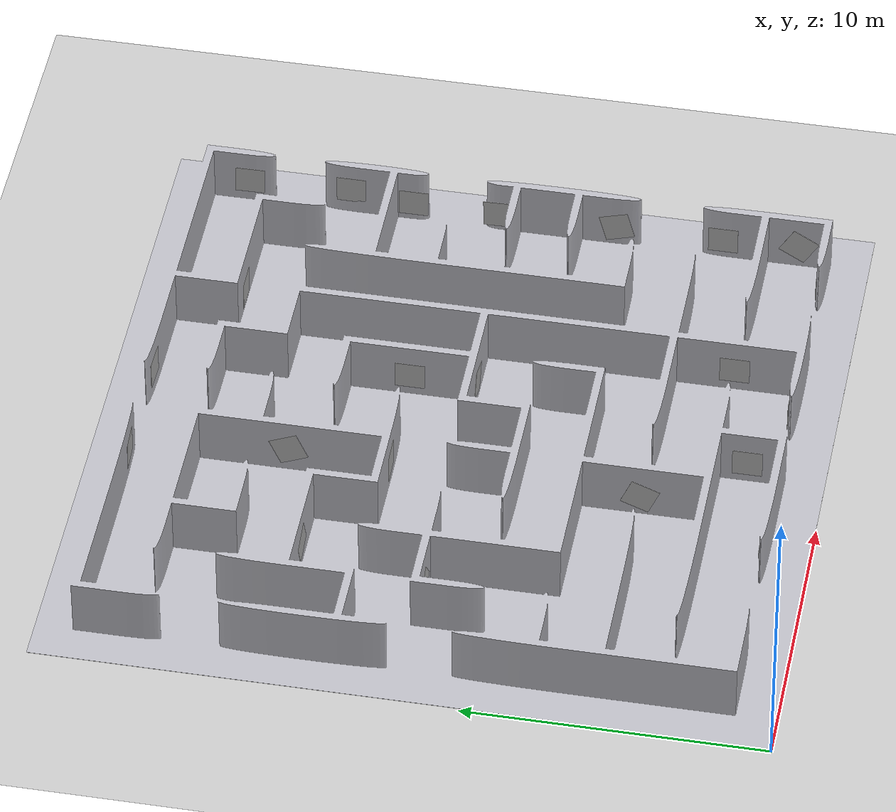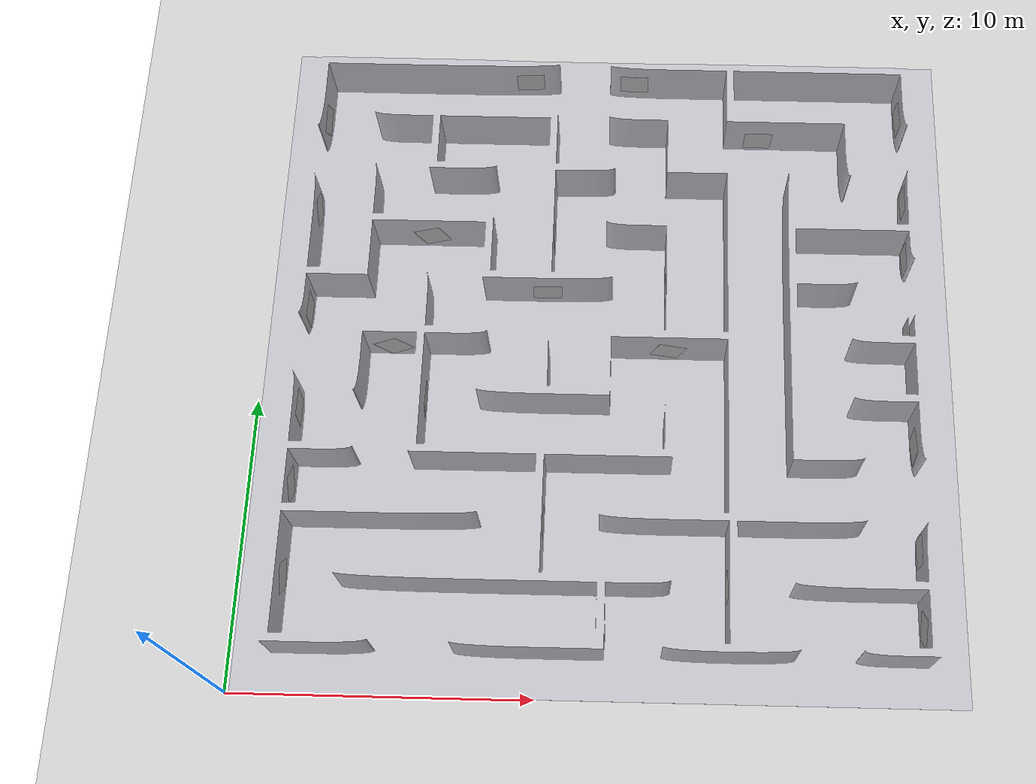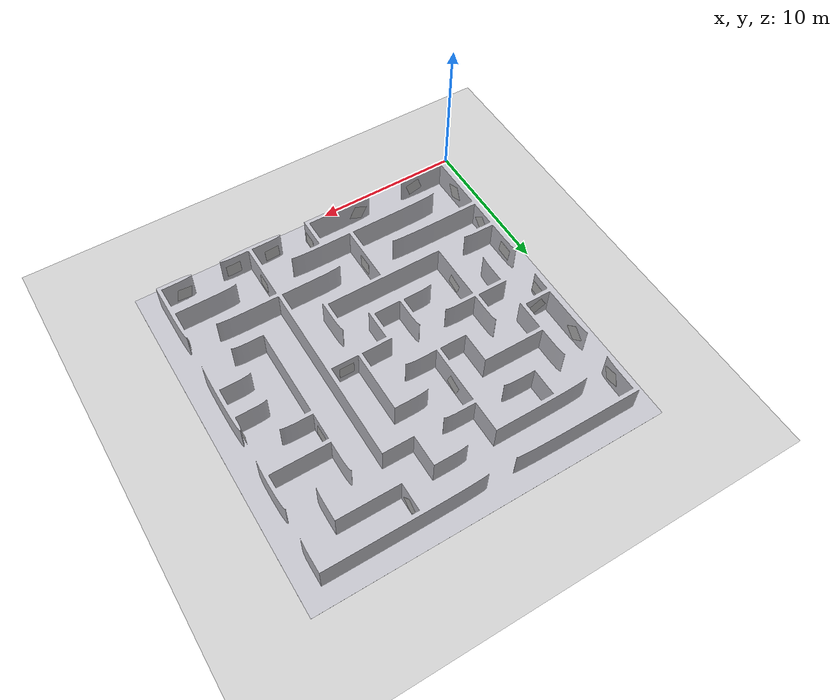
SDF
<sdf version="1.6">
 <world name="default">
  <light name="sun" type="directional">
   <pose>0 0 10 0 -0 0</pose>
   <diffuse>0.8 0.8 0.8 1</diffuse>
   <specular>0.2 0.2 0.2 1</specular>
   <attenuation>
    <range>1000</range>
    <constant>0.9</constant>
    <linear>0.01</linear>
    <quadratic>0.001</quadratic>
   </attenuation>
   <direction>-0.5 0.1 -0.9</direction>
  </light>
  <model name="ground_plane">
   <static>1</static>
   <link name="link">
    <collision name="collision">
     <geometry><plane><normal>0 0 1</normal><size>100 100</size></plane></geometry>
     <surface>
      <contact><collide_bitmask>65535</collide_bitmask></contact>
      <friction><ode><mu>100</mu><mu2>50</mu2></ode></friction>
     </surface>
    </collision>
    <visual name="visual">
     <cast_shadows>0</cast_shadows>
     <geometry><plane><normal>0 0 1</normal><size>100 100</size></plane></geometry>
     <material>
      <script><uri>file://media/materials/scripts/gazebo.material</uri><name>Gazebo/Grey</name></script>
     </material>
    </visual>
   </link>
  </model>
  <gravity>0 0 -9.8</gravity>
  <magnetic_field>6e-06 2.3e-05 -4.2e-05</magnetic_field>
  <atmosphere type="adiabatic"/>
  <physics name="default_physics" default="0" type="ode">
   <max_step_size>0.001</max_step_size>
   <real_time_factor>1</real_time_factor>
   <real_time_update_rate>1000</real_time_update_rate>
  </physics>
  <scene><ambient>0.4 0.4 0.4 1</ambient><background>0.7 0.7 0.7 1</background><shadows>1</shadows></scene>
  <audio><device>default</device></audio>
  <spherical_coordinates>
   <surface_model>EARTH_WGS84</surface_model>
   <latitude_deg>0</latitude_deg>
   <longitude_deg>0</longitude_deg>
   <elevation>0</elevation>
   <heading_deg>0</heading_deg>
  </spherical_coordinates>
  <model name="puzzle_maze">
   <link name="base_link">
    <inertial>
     <pose>-10.5044 0.408788 0.994826 0 -0 0</pose>
     <mass>975046</mass>
     <inertia>
      <ixx>4.2511e+07</ixx>
      <ixy>-636470</ixy>
      <ixz>2768.58</ixz>
      <iyy>4.19652e+07</iyy>
      <iyz>-2569.81</iyz>
      <izz>8.37692e+07</izz>
     </inertia>
    </inertial>
    <collision name="base_link_collision">
     <geometry>
      <mesh>
       <scale>0.001 0.001 0.001</scale>
       <uri>/home/ayush/ERA-DEXTER/dexter/src/robot_description/worlds/my_maze/base_link.stl</uri>
      </mesh>
     </geometry>
     <surface>
      <contact><collide_bitmask>65535</collide_bitmask></contact>
      <friction><ode><mu>0.2</mu><mu2>0.2</mu2></ode></friction>
     </surface>
    </collision>
    <visual name="base_link_visual">
     <geometry>
      <mesh>
       <scale>0.001 0.001 0.001</scale>
       <uri>/home/ayush/ERA-DEXTER/dexter/src/robot_description/worlds/my_maze/base_link.stl</uri>
      </mesh>
     </geometry>
     <material>
      <script><name>Gazebo/Silver</name><uri>file://media/materials/scripts/gazebo.material</uri></script>
     </material>
    </visual>
    <self_collide>1</self_collide>
   </link>
   <static>0</static>
   <pose>22.6142 7.85313 2.006 0 -0 0</pose>
  </model>
  <model name="visualtag_14">
   <link name="main">
    <visual name="main_Visual">
     <geometry><box><size>1 1 0.01</size></box></geometry>
     <material>
      <script>
       <uri>model://visualtag_14/materials/scripts</uri>
       <uri>model://visualtag_14/materials/textures</uri>
       <name>visualtag_14</name>
      </script>
     </material>
    </visual>
   </link>
   <static>1</static>
   <pose>11.9296 2.58127 0.794172 3.14159 -1.56924 3.14159</pose>
  </model>
  <model name="visualtag_31">
   <link name="main">
    <visual name="main_Visual">
     <geometry><box><size>1 1 0.01</size></box></geometry>
     <material>
      <script>
       <uri>model://visualtag_31/materials/scripts</uri>
       <uri>model://visualtag_31/materials/textures</uri>
       <name>visualtag_31</name>
      </script>
     </material>
    </visual>
   </link>
   <static>1</static>
   <pose>1.71227 3.61489 1.11614 -1.57605 1.13439 1.56604</pose>
  </model>
  <model name="visualtag_31_0">
   <link name="main">
    <visual name="main_Visual">
     <geometry><box><size>1 0.999996 0.01</size></box></geometry>
     <material>
      <script>
       <uri>model://visualtag_31/materials/scripts</uri>
       <uri>model://visualtag_31/materials/textures</uri>
       <name>visualtag_31</name>
      </script>
     </material>
    </visual>
   </link>
   <static>1</static>
   <pose>9.82416 5.78024 0.747033 1.57893 -1.18377 -1.57417</pose>
  </model>
  <model name="visualtag_14_0">
   <link name="main">
    <visual name="main_Visual">
     <geometry><box><size>1 1 0.01</size></box></geometry>
     <material>
      <script>
       <uri>model://visualtag_14/materials/scripts</uri>
       <uri>model://visualtag_14/materials/textures</uri>
       <name>visualtag_14</name>
      </script>
     </material>
    </visual>
   </link>
   <static>1</static>
   <pose>2.46401 14.3169 1.01829 -1.57956 -1.08161 0.007736</pose>
  </model>
  <model name="visualtag_14_1">
   <link name="main">
    <visual name="main_Visual">
     <geometry><box><size>1 1 0.01</size></box></geometry>
     <material>
      <script>
       <uri>model://visualtag_14/materials/scripts</uri>
       <uri>model://visualtag_14/materials/textures</uri>
       <name>visualtag_14</name>
      </script>
     </material>
    </visual>
   </link>
   <static>1</static>
   <pose>15.1471 12.1914 0.974341 -1.57506 0 0</pose>
  </model>
  <model name="visualtag_14_2">
   <link name="main">
    <visual name="main_Visual">
     <geometry><box><size>1 1 0.01</size></box></geometry>
     <material>
      <script>
       <uri>model://visualtag_14/materials/scripts</uri>
       <uri>model://visualtag_14/materials/textures</uri>
       <name>visualtag_14</name>
      </script>
     </material>
    </visual>
   </link>
   <static>1</static>
   <pose>16.4564 21.5828 0.794038 1.57252 0.628974 1.57181</pose>
  </model>
  <model name="visualtag_30">
   <link name="main">
    <visual name="main_Visual">
     <geometry><box><size>1 1 0.01</size></box></geometry>
     <material>
      <script>
       <uri>model://visualtag_30/materials/scripts</uri>
       <uri>model://visualtag_30/materials/textures</uri>
       <name>visualtag_30</name>
      </script>
     </material>
    </visual>
   </link>
   <static>1</static>
   <pose>9.82185 17.4172 0.901153 -1.57146 -1.15979 1.57141</pose>
  </model>
  <model name="visualtag_30_0">
   <link name="main">
    <visual name="main_Visual">
     <geometry><box><size>1 1 0.01</size></box></geometry>
     <material>
      <script>
       <uri>model://visualtag_30/materials/scripts</uri>
       <uri>model://visualtag_30/materials/textures</uri>
       <name>visualtag_30</name>
      </script>
     </material>
    </visual>
   </link>
   <static>1</static>
   <pose>9.93175 14.0308 0.858516 1.59843 -1.55638 0</pose>
  </model>
  <model name="visualtag_14_3">
   <link name="main">
    <visual name="main_Visual">
     <geometry><box><size>1 1 0.01</size></box></geometry>
     <material>
      <script>
       <uri>model://visualtag_14/materials/scripts</uri>
       <uri>model://visualtag_14/materials/textures</uri>
       <name>visualtag_14</name>
      </script>
     </material>
    </visual>
   </link>
   <static>1</static>
   <pose>22.5156 2.41386 0.861547 1.56371 -1.03923 -1.56469</pose>
  </model>
  <model name="visualtag_30_1">
   <link name="main">
    <visual name="main_Visual">
     <geometry><box><size>1 1 0.01</size></box></geometry>
     <material>
      <script>
       <uri>model://visualtag_30/materials/scripts</uri>
       <uri>model://visualtag_30/materials/textures</uri>
       <name>visualtag_30</name>
      </script>
     </material>
    </visual>
   </link>
   <static>1</static>
   <pose>17.3885 20.3651 0.70252 1.59025 -1.5521 2e-06</pose>
  </model>
  <model name="visualtag_31_1">
   <link name="main">
    <visual name="main_Visual">
     <geometry><box><size>1 1 0.01</size></box></geometry>
     <material>
      <script>
       <uri>model://visualtag_31/materials/scripts</uri>
       <uri>model://visualtag_31/materials/textures</uri>
       <name>visualtag_31</name>
      </script>
     </material>
    </visual>
   </link>
   <static>1</static>
   <pose>16.4439 3.64948 0.785191 3.14159 1.56537 3.14159</pose>
  </model>
  <model name="visualtag_17">
   <link name="main">
    <visual name="main_Visual">
     <geometry><box><size>1 1 0.01</size></box></geometry>
     <material>
      <script>
       <uri>model://visualtag_17/materials/scripts</uri>
       <uri>model://visualtag_17/materials/textures</uri>
       <name>visualtag_17</name>
      </script>
     </material>
    </visual>
   </link>
   <static>1</static>
   <pose>22.5206 4.99901 0.739249 0 -1.56953 0</pose>
  </model>
  <model name="visualtag_17_0">
   <link name="main">
    <visual name="main_Visual">
     <geometry><box><size>1 1 0.01</size></box></geometry>
     <material>
      <script>
       <uri>model://visualtag_17/materials/scripts</uri>
       <uri>model://visualtag_17/materials/textures</uri>
       <name>visualtag_17</name>
      </script>
     </material>
    </visual>
   </link>
   <static>1</static>
   <pose>22.5111 8.63038 0.769483 -1.49558 -1.29618 1.50767</pose>
  </model>
  <model name="visualtag_17_1">
   <link name="main">
    <visual name="main_Visual">
     <geometry><box><size>1 1 0.01</size></box></geometry>
     <material>
      <script>
       <uri>model://visualtag_17/materials/scripts</uri>
       <uri>model://visualtag_17/materials/textures</uri>
       <name>visualtag_17</name>
      </script>
     </material>
    </visual>
   </link>
   <static>1</static>
   <pose>21.1511 1.60582 0.68127 1.56074 -1.39694 -3.0757</pose>
  </model>
  <model name="visualtag_17_2">
   <link name="main">
    <visual name="main_Visual">
     <geometry><box><size>1 1 0.01</size></box></geometry>
     <material>
      <script>
       <uri>model://visualtag_17/materials/scripts</uri>
       <uri>model://visualtag_17/materials/textures</uri>
       <name>visualtag_17</name>
      </script>
     </material>
    </visual>
   </link>
   <static>1</static>
   <pose>17.6206 1.60967 0.890751 -1.57095 -1.54422 0</pose>
  </model>
  <model name="visualtag_17_3">
   <link name="main">
    <visual name="main_Visual">
     <geometry><box><size>1 1 0.01</size></box></geometry>
     <material>
      <script>
       <uri>model://visualtag_17/materials/scripts</uri>
       <uri>model://visualtag_17/materials/textures</uri>
       <name>visualtag_17</name>
      </script>
     </material>
    </visual>
   </link>
   <static>1</static>
   <pose>8.23171 1.58449 0.864049 1.57026 -1.10755 -3.11906</pose>
  </model>
  <model name="visualtag_17_4">
   <link name="main">
    <visual name="main_Visual">
     <geometry><box><size>1 1 0.01</size></box></geometry>
     <material>
      <script>
       <uri>model://visualtag_17/materials/scripts</uri>
       <uri>model://visualtag_17/materials/textures</uri>
       <name>visualtag_17</name>
      </script>
     </material>
    </visual>
   </link>
   <static>1</static>
   <pose>3.79378 1.60461 0.952266 1.57045 -0.315863 3.1275</pose>
  </model>
  <model name="visualtag_17_5">
   <link name="main">
    <visual name="main_Visual">
     <geometry><box><size>1 1 0.01</size></box></geometry>
     <material>
      <script>
       <uri>model://visualtag_17/materials/scripts</uri>
       <uri>model://visualtag_17/materials/textures</uri>
       <name>visualtag_17</name>
      </script>
     </material>
    </visual>
   </link>
   <static>1</static>
   <pose>1.63912 9.50779 0.960831 -1.57253 -0.100931 -1.55357</pose>
  </model>
  <model name="visualtag_17_6">
   <link name="main">
    <visual name="main_Visual">
     <geometry><box><size>1 1 0.01</size></box></geometry>
     <material>
      <script>
       <uri>model://visualtag_17/materials/scripts</uri>
       <uri>model://visualtag_17/materials/textures</uri>
       <name>visualtag_17</name>
      </script>
     </material>
    </visual>
   </link>
   <static>1</static>
   <pose>1.62431 13.2163 0.804444 1.58771 -1.49346 1.54549</pose>
  </model>
  <model name="visualtag_17_7">
   <link name="main">
    <visual name="main_Visual">
     <geometry><box><size>1 1 0.01</size></box></geometry>
     <material>
      <script>
       <uri>model://visualtag_17/materials/scripts</uri>
       <uri>model://visualtag_17/materials/textures</uri>
       <name>visualtag_17</name>
      </script>
     </material>
    </visual>
   </link>
   <static>1</static>
   <pose>14.8368 1.60809 0.717693 -1.56168 -1.53005 -2e-06</pose>
  </model>
  <model name="visualtag_17_8">
   <link name="main">
    <visual name="main_Visual">
     <geometry><box><size>1 1 0.01</size></box></geometry>
     <material>
      <script>
       <uri>model://visualtag_17/materials/scripts</uri>
       <uri>model://visualtag_17/materials/textures</uri>
       <name>visualtag_17</name>
      </script>
     </material>
    </visual>
   </link>
   <static>1</static>
   <pose>12.2198 2.00053 0.65365 -1.57071 -0.018075 1.56623</pose>
  </model>
  <model name="visualtag_17_9">
   <link name="main">
    <visual name="main_Visual">
     <geometry><box><size>1 1 0.01</size></box></geometry>
     <material>
      <script>
       <uri>model://visualtag_17/materials/scripts</uri>
       <uri>model://visualtag_17/materials/textures</uri>
       <name>visualtag_17</name>
      </script>
     </material>
    </visual>
   </link>
   <static>1</static>
   <pose>1.61691 17.0872 0.876045 1.56671 -0.779707 1.60396</pose>
  </model>
  <model name="visualtag_17_10">
   <link name="main">
    <visual name="main_Visual">
     <geometry><box><size>1 1 0.01</size></box></geometry>
     <material>
      <script>
       <uri>model://visualtag_17/materials/scripts</uri>
       <uri>model://visualtag_17/materials/textures</uri>
       <name>visualtag_17</name>
      </script>
     </material>
    </visual>
   </link>
   <static>1</static>
   <pose>1.61229 20.7492 0.870782 -1.56741 -1.22549 -1.63095</pose>
  </model>
  <model name="visualtag_17_11">
   <link name="main">
    <visual name="main_Visual">
     <geometry><box><size>1 1 0.01</size></box></geometry>
     <material>
      <script>
       <uri>model://visualtag_17/materials/scripts</uri>
       <uri>model://visualtag_17/materials/textures</uri>
       <name>visualtag_17</name>
      </script>
     </material>
    </visual>
   </link>
   <static>1</static>
   <pose>8.98297 22.5333 0.906827 1.57822 -0.00047 0.063163</pose>
  </model>
  <model name="visualtag_17_12">
   <link name="main">
    <visual name="main_Visual">
     <geometry><box><size>1 1 0.01</size></box></geometry>
     <material>
      <script>
       <uri>model://visualtag_17/materials/scripts</uri>
       <uri>model://visualtag_17/materials/textures</uri>
       <name>visualtag_17</name>
      </script>
     </material>
    </visual>
   </link>
   <static>1</static>
   <pose>12.828 22.5231 0.928131 1.57244 3.4e-05 -0.020554</pose>
  </model>
  <model name="visualtag_17_13">
   <link name="main">
    <visual name="main_Visual">
     <geometry><box><size>1 1 0.01</size></box></geometry>
     <material>
      <script>
       <uri>model://visualtag_17/materials/scripts</uri>
       <uri>model://visualtag_17/materials/textures</uri>
       <name>visualtag_17</name>
      </script>
     </material>
    </visual>
   </link>
   <static>1</static>
   <pose>22.5121 21.2685 0.870006 1.8313 1.54301 1.87448</pose>
  </model>
  <model name="visualtag_17_14">
   <link name="main">
    <visual name="main_Visual">
     <geometry><box><size>1 1 0.01</size></box></geometry>
     <material>
      <script>
       <uri>model://visualtag_17/materials/scripts</uri>
       <uri>model://visualtag_17/materials/textures</uri>
       <name>visualtag_17</name>
      </script>
     </material>
    </visual>
   </link>
   <static>1</static>
   <pose>22.5281 17.7699 0.973203 3.14159 -1.56769 3.14159</pose>
  </model>
  <model name="visualtag_17_15">
   <link name="main">
    <visual name="main_Visual">
     <geometry><box><size>1 1 0.01</size></box></geometry>
     <material>
      <script>
       <uri>model://visualtag_17/materials/scripts</uri>
       <uri>model://visualtag_17/materials/textures</uri>
       <name>visualtag_17</name>
      </script>
     </material>
    </visual>
   </link>
   <static>1</static>
   <pose>22.5272 15.6118 0.718553 3.14159 1.56866 3.14159</pose>
  </model>
  <model name="visualtag_17_16">
   <link name="main">
    <visual name="main_Visual">
     <geometry><box><size>1 1 0.01</size></box></geometry>
     <material>
      <script>
       <uri>model://visualtag_17/materials/scripts</uri>
       <uri>model://visualtag_17/materials/textures</uri>
       <name>visualtag_17</name>
      </script>
     </material>
    </visual>
   </link>
   <static>1</static>
   <pose>22.471 12.6944 0.722181 -0.912971 -1.53303 0.913316</pose>
  </model>
  <model name="visualtag_31_2">
   <link name="main">
    <visual name="main_Visual">
     <geometry><box><size>1 1 0.01</size></box></geometry>
     <material>
      <script>
       <uri>model://visualtag_31/materials/scripts</uri>
       <uri>model://visualtag_31/materials/textures</uri>
       <name>visualtag_31</name>
      </script>
     </material>
    </visual>
   </link>
   <static>1</static>
   <pose>10.0964 5.70199 0.824976 -1.47368 -1.54733 -1.66788</pose>
  </model>
  <model name="visualtag_31_3">
   <link name="main">
    <visual name="main_Visual">
     <geometry><box><size>1 1 0.01</size></box></geometry>
     <material>
      <script>
       <uri>model://visualtag_31/materials/scripts</uri>
       <uri>model://visualtag_31/materials/textures</uri>
       <name>visualtag_31</name>
      </script>
     </material>
    </visual>
   </link>
   <static>1</static>
   <pose>5.88814 9.95828 0.740705 1.81255 -1.28862 1.33826</pose>
  </model>
  <model name="visualtag_31_4">
   <link name="main">
    <visual name="main_Visual">
     <geometry><box><size>1 1 0.01</size></box></geometry>
     <material>
      <script>
       <uri>model://visualtag_31/materials/scripts</uri>
       <uri>model://visualtag_31/materials/textures</uri>
       <name>visualtag_31</name>
      </script>
     </material>
    </visual>
   </link>
   <static>1</static>
   <pose>14.1927 11.9072 0.825451 1.61307 -1.24703 -0.040083</pose>
  </model>
  <model name="visualtag_31_5">
   <link name="main">
    <visual name="main_Visual">
     <geometry><box><size>1 1 0.01</size></box></geometry>
     <material>
      <script>
       <uri>model://visualtag_31/materials/scripts</uri>
       <uri>model://visualtag_31/materials/textures</uri>
       <name>visualtag_31</name>
      </script>
     </material>
    </visual>
   </link>
   <static>1</static>
   <pose>10.0944 16.2534 0.70199 1.55988 -1.2786 1.58125</pose>
  </model>
  <model name="visualtag_31_6">
   <link name="main">
    <visual name="main_Visual">
     <geometry><box><size>1 1 0.01</size></box></geometry>
     <material>
      <script>
       <uri>model://visualtag_31/materials/scripts</uri>
       <uri>model://visualtag_31/materials/textures</uri>
       <name>visualtag_31</name>
      </script>
     </material>
    </visual>
   </link>
   <static>1</static>
   <pose>16.1611 3.64313 0.849325 3.14159 -1.56422 3.14159</pose>
  </model>
  <model name="visualtag_31_7">
   <link name="main">
    <visual name="main_Visual">
     <geometry><box><size>1 1 0.01</size></box></geometry>
     <material>
      <script>
       <uri>model://visualtag_31/materials/scripts</uri>
       <uri>model://visualtag_31/materials/textures</uri>
       <name>visualtag_31</name>
      </script>
     </material>
    </visual>
   </link>
   <static>1</static>
   <pose>5.73201 16.1566 0.815457 -1.57081 -1.17403 3.14074</pose>
  </model>
  <model name="visualtag_31_8">
   <link name="main">
    <visual name="main_Visual">
     <geometry><box><size>1 1 0.01</size></box></geometry>
     <material>
      <script>
       <uri>model://visualtag_31/materials/scripts</uri>
       <uri>model://visualtag_31/materials/textures</uri>
       <name>visualtag_31</name>
      </script>
     </material>
    </visual>
   </link>
   <static>1</static>
   <pose>14.0565 14.1763 0.797982 3.14159 -1.56918 3.14159</pose>
  </model>
  <model name="visualtag_13">
   <link name="main">
    <visual name="main_Visual">
     <geometry><box><size>1 1 0.01</size></box></geometry>
     <material>
      <script>
       <uri>model://visualtag_13/materials/scripts</uri>
       <uri>model://visualtag_13/materials/textures</uri>
       <name>visualtag_13</name>
      </script>
     </material>
    </visual>
   </link>
   <static>1</static>
   <pose>4.65984 11.9172 0.732285 -1.55398 -0.93694 3.12805</pose>
  </model>
  <model name="visualtag_13_0">
   <link name="main">
    <visual name="main_Visual">
     <geometry><box><size>1 1 0.01</size></box></geometry>
     <material>
      <script>
       <uri>model://visualtag_13/materials/scripts</uri>
       <uri>model://visualtag_13/materials/textures</uri>
       <name>visualtag_13</name>
      </script>
     </material>
    </visual>
   </link>
   <static>1</static>
   <pose>1.62459 6.77636 0.910696 1.5714 0.791088 1.57123</pose>
  </model>
  <model name="visualtag_13_1">
   <link name="main">
    <visual name="main_Visual">
     <geometry><box><size>1 1 0.01</size></box></geometry>
     <material>
      <script>
       <uri>model://visualtag_13/materials/scripts</uri>
       <uri>model://visualtag_13/materials/textures</uri>
       <name>visualtag_13</name>
      </script>
     </material>
    </visual>
   </link>
   <static>1</static>
   <pose>18.6094 15.3051 0.982206 0.675524 -1.53874 2.46582</pose>
  </model>
 </world>
</sdf>
